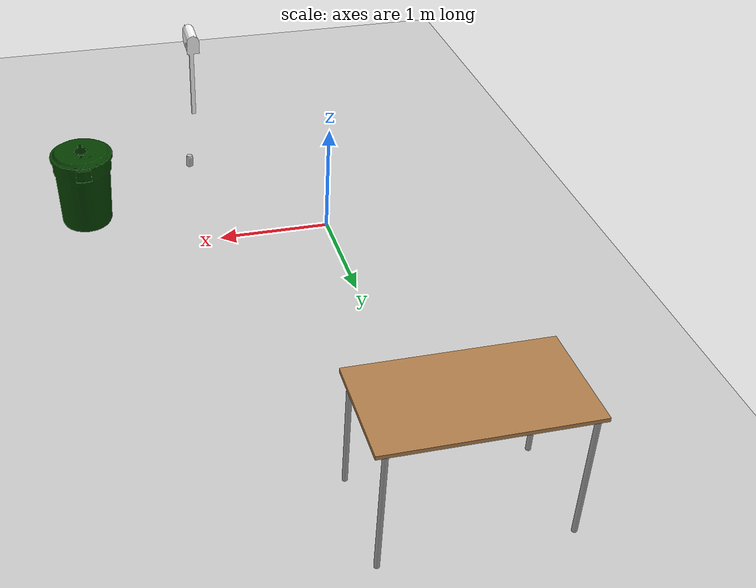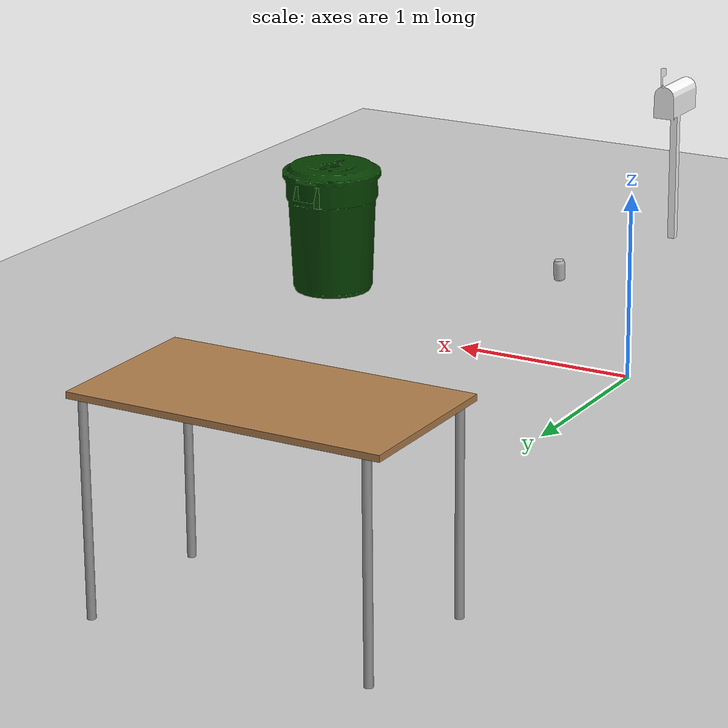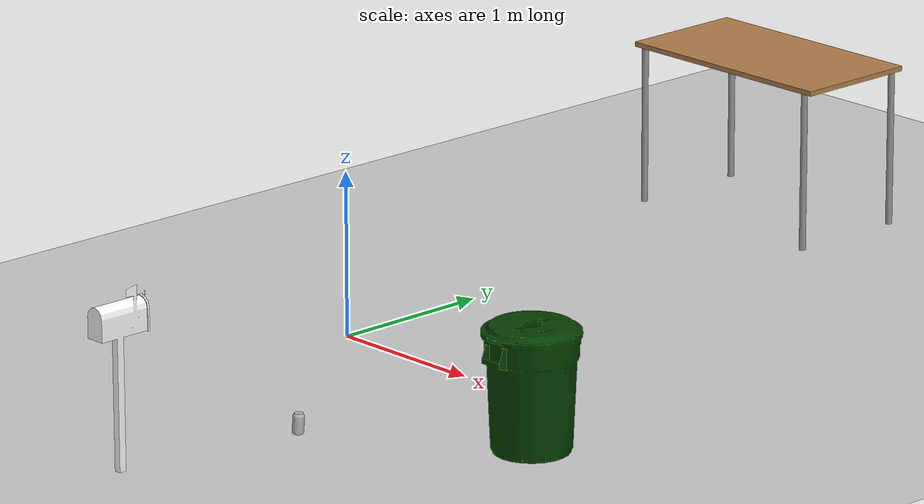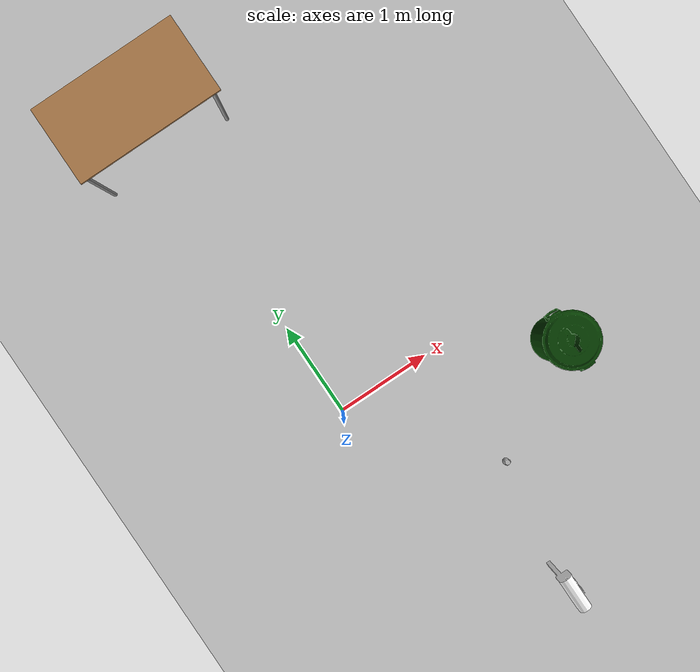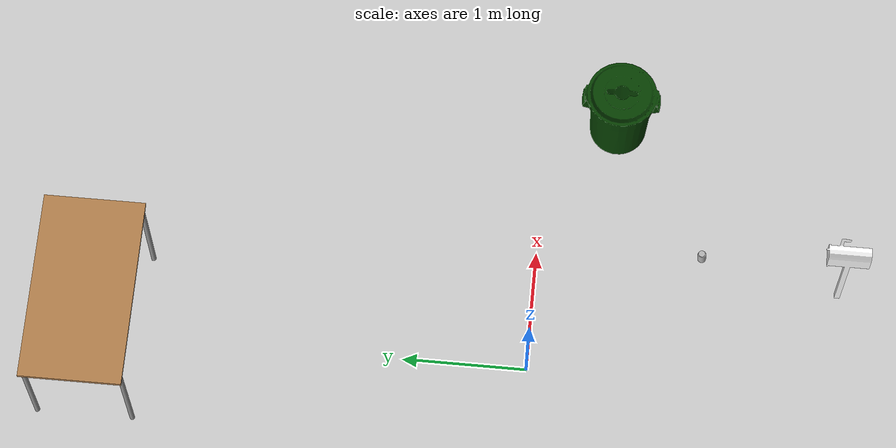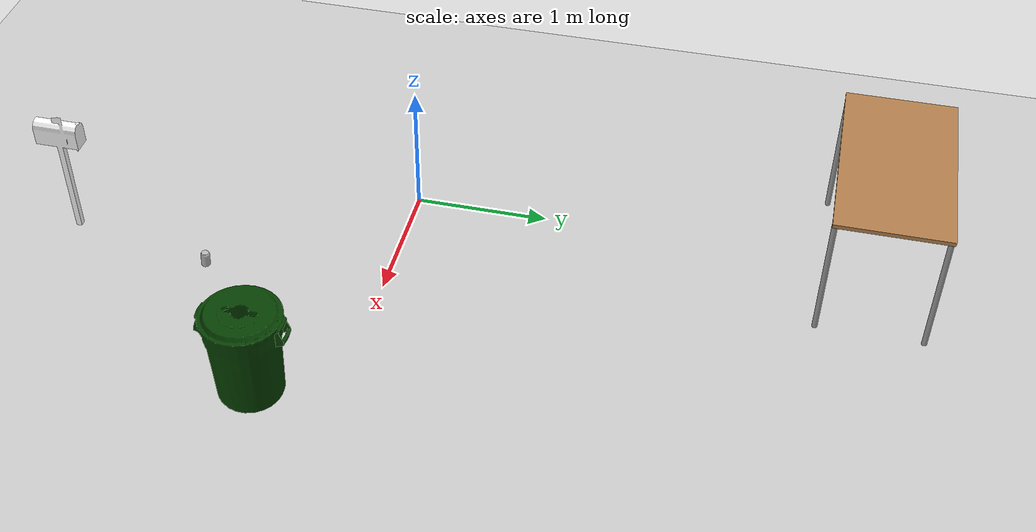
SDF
<sdf version="1.7">
 <world name="default">
  <light name="sun" type="directional">
   <pose>0 0 10 0 -0 0</pose>
   <diffuse>0.8 0.8 0.8 1</diffuse>
   <specular>0.2 0.2 0.2 1</specular>
   <attenuation>
    <range>1000</range>
    <constant>0.9</constant>
    <linear>0.01</linear>
    <quadratic>0.001</quadratic>
   </attenuation>
   <direction>-0.5 0.1 -0.9</direction>
   <spot><inner_angle>0</inner_angle><outer_angle>0</outer_angle><falloff>0</falloff></spot>
  </light>
  <model name="ground_plane">
   <static>1</static>
   <link name="link">
    <collision name="collision">
     <geometry><plane><normal>0 0 1</normal><size>100 100</size></plane></geometry>
     <surface>
      <contact><collide_bitmask>65535</collide_bitmask></contact>
      <friction><ode><mu>100</mu><mu2>50</mu2></ode></friction>
     </surface>
    </collision>
    <visual name="visual">
     <cast_shadows>0</cast_shadows>
     <geometry><plane><normal>0 0 1</normal><size>100 100</size></plane></geometry>
     <material>
      <script><uri>file://media/materials/scripts/gazebo.material</uri><name>Gazebo/Grey</name></script>
     </material>
    </visual>
   </link>
  </model>
  <gravity>0 0 -9.8</gravity>
  <magnetic_field>6e-06 2.3e-05 -4.2e-05</magnetic_field>
  <atmosphere type="adiabatic"/>
  <physics type="ode">
   <max_step_size>0.001</max_step_size>
   <real_time_factor>1</real_time_factor>
   <real_time_update_rate>1000</real_time_update_rate>
  </physics>
  <scene><ambient>0.4 0.4 0.4 1</ambient><background>0.7 0.7 0.7 1</background><shadows>1</shadows></scene>
  <spherical_coordinates>
   <surface_model>EARTH_WGS84</surface_model>
   <latitude_deg>0</latitude_deg>
   <longitude_deg>0</longitude_deg>
   <elevation>0</elevation>
   <heading_deg>0</heading_deg>
  </spherical_coordinates>
  <model name="Mailbox">
   <link name="link">
    <collision name="collision">
     <geometry><mesh><uri>model://mailbox/meshes/mailbox.dae</uri></mesh></geometry>
    </collision>
    <visual name="visual">
     <geometry><mesh><uri>model://mailbox/meshes/mailbox.dae</uri></mesh></geometry>
     <material>
      <script>
       <uri>model://mailbox/materials/scripts</uri>
       <uri>model://mailbox/materials/textures</uri>
       <name>Mailbox/Diffuse</name>
      </script>
     </material>
    </visual>
    <inertial>
     <inertia><ixx>1</ixx><ixy>0</ixy><ixz>0</ixz><iyy>1</iyy><iyz>0</iyz><izz>1</izz></inertia>
     <mass>1</mass>
    </inertial>
   </link>
   <pose>0.860108 -2.44409 -1e-05 -7e-06 -1e-06 0</pose>
  </model>
  <model name="coke_can">
   <link name="link">
    <inertial>
     <pose>0 0 0.06 0 -0 0</pose>
     <mass>0.39</mass>
     <inertia>
      <ixx>0.00055575</ixx>
      <ixy>0</ixy>
      <ixz>0</ixz>
      <iyy>0.00055575</iyy>
      <iyz>0</iyz>
      <izz>0.0001755</izz>
     </inertia>
    </inertial>
    <collision name="collision">
     <pose>0.003937 0.004724 -0.18 0 -0 0</pose>
     <geometry><mesh><uri>model://coke_can/meshes/coke_can.dae</uri></mesh></geometry>
     <surface>
      <friction><ode><mu>1</mu><mu2>1</mu2></ode></friction>
      <contact><ode><kp>1e+07</kp><kd>1</kd><min_depth>0.001</min_depth><max_vel>0.1</max_vel></ode></contact>
     </surface>
    </collision>
    <visual name="visual">
     <pose>0.003937 0.004724 -0.18 0 -0 0</pose>
     <geometry><mesh><uri>model://coke_can/meshes/coke_can.dae</uri></mesh></geometry>
    </visual>
   </link>
   <pose>1.07612 -1.33921 -0.002786 -0.063607 0.00186 -0.000533</pose>
  </model>
  <model name="first_2015_trash_can">
   <link name="link">
    <inertial>
     <pose>0 0 0.3683 0 -0 0</pose>
     <mass>4.83076</mass>
     <inertia>
      <ixx>0.281534</ixx>
      <ixy>0</ixy>
      <ixz>0</ixz>
      <iyy>0.281534</iyy>
      <iyz>0</iyz>
      <izz>0.126223</izz>
     </inertia>
    </inertial>
    <visual name="visual">
     <geometry><mesh><uri>model://first_2015_trash_can/meshes/trash_can.dae</uri></mesh></geometry>
    </visual>
    <collision name="collision">
     <geometry><mesh><uri>model://first_2015_trash_can/meshes/trash_can.dae</uri></mesh></geometry>
    </collision>
   </link>
   <pose>2.16289 -0.581271 -1.1e-05 -1.3e-05 1e-05 -0.000405</pose>
  </model>
  <model name="table">
   <static>1</static>
   <link name="link">
    <collision name="surface">
     <pose>0 0 1 0 -0 0</pose>
     <geometry><box><size>1.5 0.8 0.03</size></box></geometry>
     <surface><friction><ode><mu>0.6</mu><mu2>0.6</mu2></ode></friction></surface>
    </collision>
    <visual name="visual1">
     <pose>0 0 1 0 -0 0</pose>
     <geometry><box><size>1.5 0.8 0.03</size></box></geometry>
     <material>
      <script><uri>file://media/materials/scripts/gazebo.material</uri><name>Gazebo/Wood</name></script>
     </material>
    </visual>
    <collision name="front_left_leg">
     <pose>0.68 0.38 0.5 0 -0 0</pose>
     <geometry><cylinder><radius>0.02</radius><length>1</length></cylinder></geometry>
    </collision>
    <visual name="front_left_leg">
     <pose>0.68 0.38 0.5 0 -0 0</pose>
     <geometry><cylinder><radius>0.02</radius><length>1</length></cylinder></geometry>
     <material>
      <script><uri>file://media/materials/scripts/gazebo.material</uri><name>Gazebo/Grey</name></script>
     </material>
    </visual>
    <collision name="front_right_leg">
     <pose>0.68 -0.38 0.5 0 -0 0</pose>
     <geometry><cylinder><radius>0.02</radius><length>1</length></cylinder></geometry>
    </collision>
    <visual name="front_right_leg">
     <pose>0.68 -0.38 0.5 0 -0 0</pose>
     <geometry><cylinder><radius>0.02</radius><length>1</length></cylinder></geometry>
     <material>
      <script><uri>file://media/materials/scripts/gazebo.material</uri><name>Gazebo/Grey</name></script>
     </material>
    </visual>
    <collision name="back_right_leg">
     <pose>-0.68 -0.38 0.5 0 -0 0</pose>
     <geometry><cylinder><radius>0.02</radius><length>1</length></cylinder></geometry>
    </collision>
    <visual name="back_right_leg">
     <pose>-0.68 -0.38 0.5 0 -0 0</pose>
     <geometry><cylinder><radius>0.02</radius><length>1</length></cylinder></geometry>
     <material>
      <script><uri>file://media/materials/scripts/gazebo.material</uri><name>Gazebo/Grey</name></script>
     </material>
    </visual>
    <collision name="back_left_leg">
     <pose>-0.68 0.38 0.5 0 -0 0</pose>
     <geometry><cylinder><radius>0.02</radius><length>1</length></cylinder></geometry>
    </collision>
    <visual name="back_left_leg">
     <pose>-0.68 0.38 0.5 0 -0 0</pose>
     <geometry><cylinder><radius>0.02</radius><length>1</length></cylinder></geometry>
     <material>
      <script><uri>file://media/materials/scripts/gazebo.material</uri><name>Gazebo/Grey</name></script>
     </material>
    </visual>
   </link>
   <pose>0.002951 3.4686 0 0 -0 0</pose>
  </model>
 </world>
</sdf>
